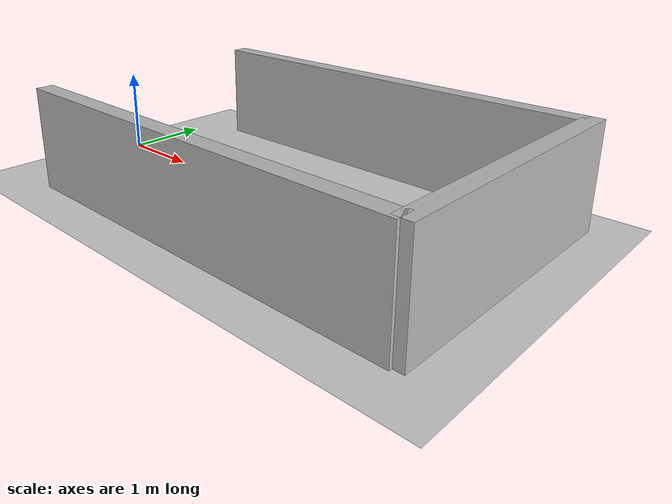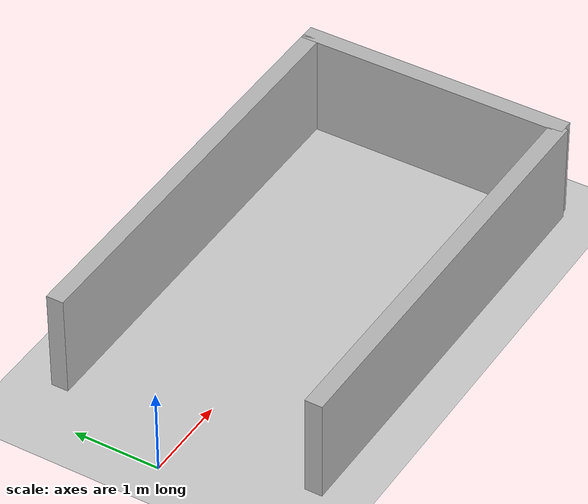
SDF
<?xml version="1.0"?>
<sdf version="1.6">
  <world name="v2-04g-maneuver-s4913">
    <gravity>0 0 -9.81</gravity>
    <physics name="v2_deterministic" type="ode">
      <max_step_size>0.002</max_step_size>
      <real_time_update_rate>500</real_time_update_rate>
    </physics>
    <include>
      <uri>model://sun</uri>
    </include>
    <include>
      <uri>model://ground_plane</uri>
    </include>
    <model name="bay-left">
      <static>true</static>
      <pose>2.975752741 1.505492635 0.600000000 0 0 0.002596117</pose>
      <link name="link">
        <collision name="collision">
          <geometry>
            <box>
              <size>5.000000 0.200000 1.200000</size>
            </box>
          </geometry>
        </collision>
        <visual name="visual">
          <geometry>
            <box>
              <size>5.000000 0.200000 1.200000</size>
            </box>
          </geometry>
        </visual>
      </link>
    </model>
    <model name="bay-right">
      <static>true</static>
      <pose>2.998212244 -1.512758974 0.600000000 0 0 -0.004800331</pose>
      <link name="link">
        <collision name="collision">
          <geometry>
            <box>
              <size>5.000000 0.200000 1.200000</size>
            </box>
          </geometry>
        </collision>
        <visual name="visual">
          <geometry>
            <box>
              <size>5.000000 0.200000 1.200000</size>
            </box>
          </geometry>
        </visual>
      </link>
    </model>
    <model name="bay-back">
      <static>true</static>
      <pose>5.518034098 0.012525342 0.600000000 0 0 -0.004484685</pose>
      <link name="link">
        <collision name="collision">
          <geometry>
            <box>
              <size>0.200000 3.200000 1.200000</size>
            </box>
          </geometry>
        </collision>
        <visual name="visual">
          <geometry>
            <box>
              <size>0.200000 3.200000 1.200000</size>
            </box>
          </geometry>
        </visual>
      </link>
    </model>
  </world>
</sdf>
